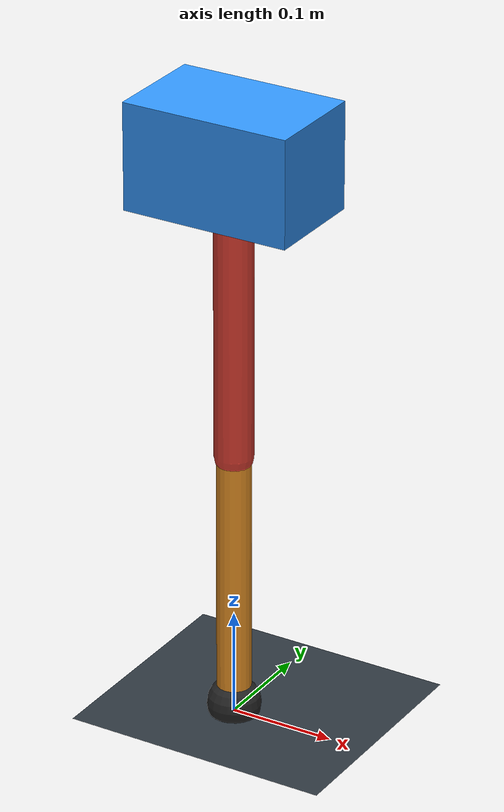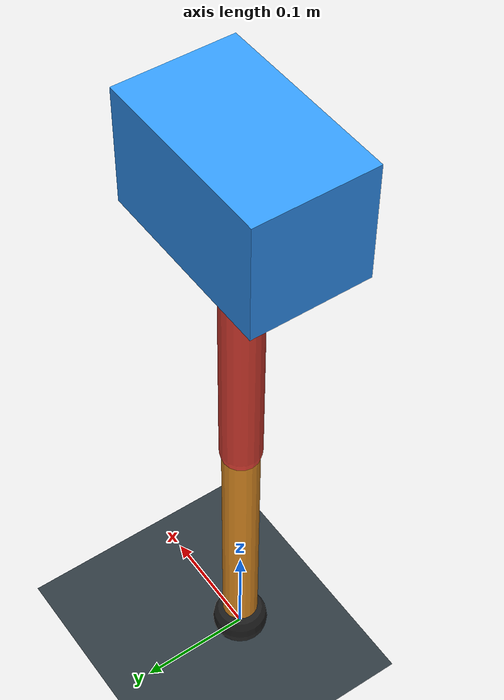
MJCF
<mujoco model="single_axis_two_bar">
  <compiler angle="radian" inertiafromgeom="true"/>
  <option timestep="0.001" integrator="implicitfast" gravity="0 0 -9.81"/>
  <default>
    <joint damping="0.08"/>
    <geom friction="1.2 0.01 0.0001" condim="3"/>
  </default>
  <worldbody>
    <geom name="floor" type="plane" size="5 5 0.1" rgba="0.18 0.22 0.25 1"/>
    <body name="carriage" pos="0 0 0.5461895040748004">
      <joint name="pole_slide" type="slide" axis="0 0 1"/>
      <geom name="payload" type="box" size="0.08 0.05 0.05" mass="3.9194328549546498" rgba="0.2 0.6 1 1"/>
      <body name="thigh" pos="0 0 0">
        <joint name="hip" type="hinge" axis="0 1 0"/>
        <geom name="thigh_link" type="capsule" fromto="0 0 0 0 0 -0.286370974815103" size="0.018" mass="0.20404310361433178" rgba="0.9 0.25 0.2 1"/>
        <body name="shank" pos="0 0 -0.286370974815103">
          <joint name="knee" type="hinge" axis="0 1 0"/>
          <geom name="shank_link" type="capsule" fromto="0 0 0 0 0 -0.25093779227232005" size="0.016" mass="0.17879649284440083" rgba="0.95 0.6 0.15 1"/>
          <geom name="foot" type="sphere" pos="0 0 -0.25093779227232005" size="0.025" mass="0.03" rgba="0.15 0.15 0.15 1"/>
          <site name="toe" pos="0 0 -0.25093779227232005" size="0.008"/>
        </body>
      </body>
    </body>
  </worldbody>
  <actuator>
    <motor name="hip_motor" joint="hip" ctrlrange="-62.98231274651409 62.98231274651409"/>
    <motor name="knee_motor" joint="knee" ctrlrange="-130.16887499291775 130.16887499291775"/>
  </actuator>
</mujoco>
